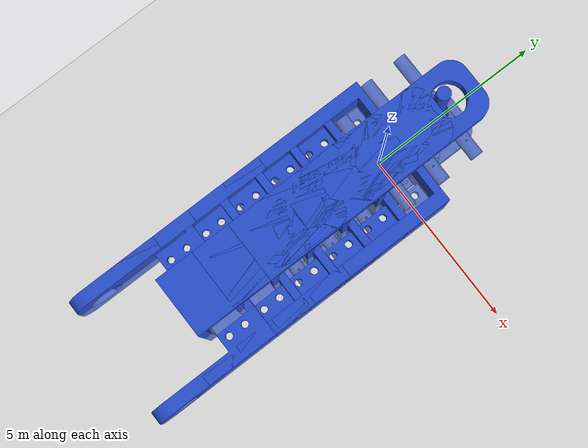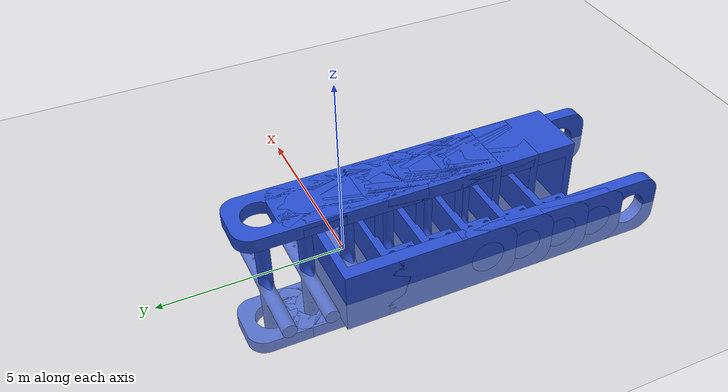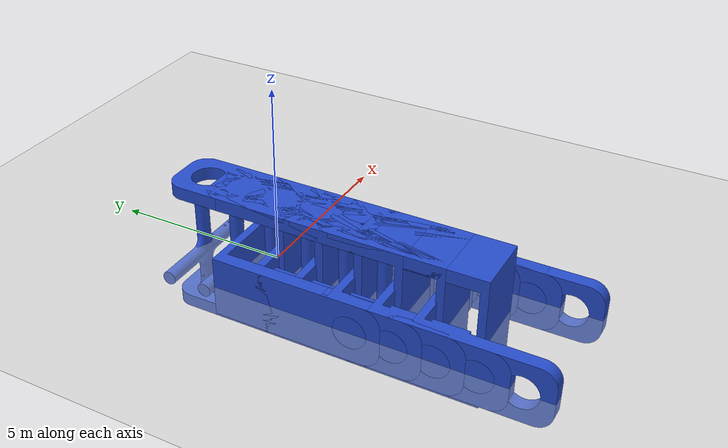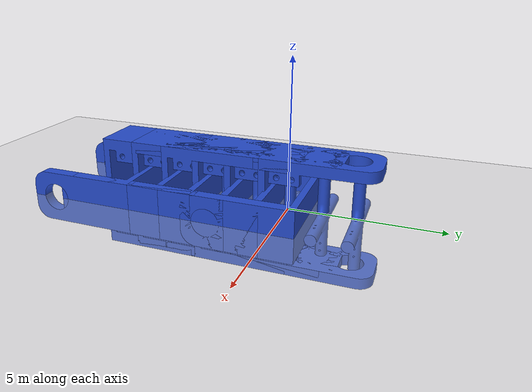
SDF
<sdf version='1.11'>    <world name="car_world">

<model name="ground_plane">
            <static>true</static>
            <link name="link">
                <collision name="collision">
                <geometry>
                    <plane>
                    <normal>0 0 1</normal>
                    </plane>
                </geometry>
                </collision>
                <visual name="visual">
                <geometry>
                    <plane>
                    <normal>0 0 1</normal>
                    <size>100 100</size>
                    </plane>
                </geometry>
                <material>
                    <ambient>0.8 0.8 0.8 1</ambient>
                    <diffuse>0.8 0.8 0.8 1</diffuse>
                    <specular>0.8 0.8 0.8 1</specular>
                </material>
                </visual>
            </link>
        </model>
  <model name='snake_robot'>
    <link name='base_link'>
      <inertial>
        <pose>0 0 0 0 0 0</pose>
        <mass>1</mass>
        <inertia>
          <ixx>0.10000000000000001</ixx>
          <ixy>0</ixy>
          <ixz>0</ixz>
          <iyy>0.10000000000000001</iyy>
          <iyz>0</iyz>
          <izz>0.10000000000000001</izz>
        </inertia>
      </inertial>
      <collision name='base_link_collision'>
        <pose>0 0 0 0 0 0</pose>
        <geometry>
          <mesh>
            <uri>file:///home/harikrishnan/ROS_PROJECTS/snake_bot_ws/src/snake_bot/meshes/module.stl</uri>
                  <scale>0.05 0.05 0.05 </scale>
     </mesh>
</geometry>
        <surface>
          <contact>
            <ode/>
          </contact>
          <friction>
            <ode/>
          </friction>
        </surface>
      </collision>
      <visual name='base_link_visual'>
        <pose>0 0.52800000000000002 0 3.1415899999999999 0 0</pose>
        <geometry>
          <mesh>
            <uri>file:///home/harikrishnan/ROS_PROJECTS/snake_bot_ws/src/snake_bot/meshes/module.stl</uri>
                  <scale>0.05 0.05 0.05 </scale>
     </mesh>
</geometry>
        <material>
          <script>
            <name>Gazebo/Blue</name>
            <uri>file://media/materials/scripts/gazebo.material</uri>
          </script>
          <diffuse>0 0 1 0.5</diffuse>
          <ambient>0 0 1 0.5</ambient>
        </material>
      </visual>
    </link>
    <joint name='joint2' type='revolute'>
      <pose relative_to='base_link'>0 0 0 0 0 0</pose>
      <parent>base_link</parent>
      <child>cross1</child>
      <axis>
        <xyz>1 0 0</xyz>
        <limit>
          <lower>-1.5700000000000001</lower>
          <upper>1.5700000000000001</upper>
          <effort>100</effort>
          <velocity>1</velocity>
        </limit>
        <dynamics>
          <spring_reference>0</spring_reference>
          <spring_stiffness>0</spring_stiffness>
        </dynamics>
      </axis>
    </joint>
    <link name='cross1'>
      <pose relative_to='joint2'>0 0 0 0 0 0</pose>
      <inertial>
        <pose>0 0 0 0 0 0</pose>
        <mass>1</mass>
        <inertia>
          <ixx>0.10000000000000001</ixx>
          <ixy>0</ixy>
          <ixz>0</ixz>
          <iyy>0.10000000000000001</iyy>
          <iyz>0</iyz>
          <izz>0.10000000000000001</izz>
        </inertia>
      </inertial>
      <collision name='cross1_collision'>
        <pose>0 0 0 0 0 0</pose>
        <geometry>
         <mesh>
            <uri>file:///home/harikrishnan/ROS_PROJECTS/snake_bot_ws/src/snake_bot/meshes/cross.stl</uri>
                  <scale>0.05 0.05 0.05 </scale>
     </mesh>
</geometry>
        <surface>
          <contact>
            <ode/>
          </contact>
          <friction>
            <ode/>
          </friction>
        </surface>
      </collision>
      <visual name='cross1_visual'>
        <pose>0.065000000000000002 -0.55800000000000005 0.065000000000000002 0 0 0</pose>
        <geometry>
         <mesh>
            <uri>file:///home/harikrishnan/ROS_PROJECTS/snake_bot_ws/src/snake_bot/meshes/cross.stl</uri>
                  <scale>0.05 0.05 0.05 </scale>
     </mesh>
</geometry>
        <material>
          <script>
            <name>Gazebo/Blue</name>
            <uri>file://media/materials/scripts/gazebo.material</uri>
          </script>
          <diffuse>0 0 1 0.5</diffuse>
          <ambient>0 0 1 0.5</ambient>
        </material>
      </visual>
    </link>
    <joint name='joint1' type='revolute'>
      <pose relative_to='cross1'>0 0 0 0 0 0</pose>
      <parent>cross1</parent>
      <child>segment1</child>
      <axis>
        <xyz>0 0 1</xyz>
        <limit>
          <lower>-1.5700000000000001</lower>
          <upper>1.5700000000000001</upper>
          <effort>100</effort>
          <velocity>1</velocity>
        </limit>
        <dynamics>
          <spring_reference>0</spring_reference>
          <spring_stiffness>0</spring_stiffness>
        </dynamics>
      </axis>
    </joint>
    <link name='segment1'>
      <pose relative_to='joint1'>0 0 0 0 0 0</pose>
      <inertial>
        <pose>0 -0.29999999999999999 0 0 0 0</pose>
        <mass>2</mass>
        <inertia>
          <ixx>0.37999999999999989</ixx>
          <ixy>0</ixy>
          <ixz>0</ixz>
          <iyy>0.20000000000000001</iyy>
          <iyz>0</iyz>
          <izz>0.37999999999999989</izz>
        </inertia>
      </inertial>
      <collision name='segment1_collision'>
        <pose>0 0 0 0 0 0</pose>
        <geometry>
          <mesh>
            <uri>file:///home/harikrishnan/ROS_PROJECTS/snake_bot_ws/src/snake_bot/meshes/module.stl</uri>
                  <scale>0.05 0.05 0.05 </scale>
     </mesh>
</geometry>
        <surface>
          <contact>
            <ode/>
          </contact>
          <friction>
            <ode/>
          </friction>
        </surface>
      </collision>
      <collision name='segment1_fixed_joint_lump__segment2a_collision_1'>
        <pose>0 -0.59999999999999998 0 0 0 0</pose>
        <geometry>
          <mesh>
            <uri>file:///home/harikrishnan/ROS_PROJECTS/snake_bot_ws/src/snake_bot/meshes/module.stl</uri>
                  <scale>0.05 0.05 0.05 </scale>
     </mesh>
</geometry>
        <surface>
          <contact>
            <ode/>
          </contact>
          <friction>
            <ode/>
          </friction>
        </surface>
      </collision>
      <visual name='segment1_visual'>
        <pose>0 -0.53000000000000003 0 0 1.5707963267948966 0</pose>
        <geometry>
          <mesh>
            <uri>file:///home/harikrishnan/ROS_PROJECTS/snake_bot_ws/src/snake_bot/meshes/module.stl</uri>
                  <scale>0.05 0.05 0.05 </scale>
     </mesh>
</geometry>
        <material>
          <script>
            <name>Gazebo/Blue</name>
            <uri>file://media/materials/scripts/gazebo.material</uri>
          </script>
          <diffuse>0 0 1 0.5</diffuse>
          <ambient>0 0 1 0.5</ambient>
        </material>
      </visual>
      <visual name='segment1_fixed_joint_lump__segment2a_visual_1'>
        <pose>0 -0.59999999999999998 0 0 0 3.1415899999999999</pose>
        <geometry>
          <mesh>
            <uri>file:///home/harikrishnan/ROS_PROJECTS/snake_bot_ws/src/snake_bot/meshes/module.stl</uri>
                  <scale>0.05 0.05 0.05 </scale>
     </mesh>
</geometry>
        <material>
          <script>
            <name>Gazebo/Blue</name>
            <uri>file://media/materials/scripts/gazebo.material</uri>
          </script>
          <diffuse>0 0 1 0.5</diffuse>
          <ambient>0 0 1 0.5</ambient>
        </material>
      </visual>
    </link>
    <joint name='joint4' type='revolute'>
      <pose relative_to='segment1'>0 -1.1220000000000001 0 0 0 0</pose>
      <parent>segment1</parent>
      <child>cross2</child>
      <axis>
        <xyz>1 0 0</xyz>
        <limit>
          <lower>-1.5700000000000001</lower>
          <upper>1.5700000000000001</upper>
          <effort>100</effort>
          <velocity>1</velocity>
        </limit>
        <dynamics>
          <spring_reference>0</spring_reference>
          <spring_stiffness>0</spring_stiffness>
        </dynamics>
      </axis>
    </joint>
    <link name='cross2'>
      <pose relative_to='joint4'>0 0 0 0 0 0</pose>
      <inertial>
        <pose>0 0 0 0 0 0</pose>
        <mass>1</mass>
        <inertia>
          <ixx>0.10000000000000001</ixx>
          <ixy>0</ixy>
          <ixz>0</ixz>
          <iyy>0.10000000000000001</iyy>
          <iyz>0</iyz>
          <izz>0.10000000000000001</izz>
        </inertia>
      </inertial>
      <collision name='cross2_collision'>
        <pose>0 0 0 0 0 0</pose>
        <geometry>
         <mesh>
            <uri>file:///home/harikrishnan/ROS_PROJECTS/snake_bot_ws/src/snake_bot/meshes/cross.stl</uri>
                  <scale>0.05 0.05 0.05 </scale>
     </mesh>
</geometry>
        <surface>
          <contact>
            <ode/>
          </contact>
          <friction>
            <ode/>
          </friction>
        </surface>
      </collision>
      <visual name='cross2_visual'>
        <pose>0.065000000000000002 -0.55800000000000005 0.065000000000000002 0 0 0</pose>
        <geometry>
         <mesh>
            <uri>file:///home/harikrishnan/ROS_PROJECTS/snake_bot_ws/src/snake_bot/meshes/cross.stl</uri>
                  <scale>0.05 0.05 0.05 </scale>
     </mesh>
</geometry>
        <material>
          <script>
            <name>Gazebo/Blue</name>
            <uri>file://media/materials/scripts/gazebo.material</uri>
          </script>
          <diffuse>0 0 1 0.5</diffuse>
          <ambient>0 0 1 0.5</ambient>
        </material>
      </visual>
    </link>
    <joint name='joint3' type='revolute'>
      <pose relative_to='cross2'>0 0 0 0 0 0</pose>
      <parent>cross2</parent>
      <child>segment2b</child>
      <axis>
        <xyz>0 0 1</xyz>
        <limit>
          <lower>-1.5700000000000001</lower>
          <upper>1.5700000000000001</upper>
          <effort>100</effort>
          <velocity>1</velocity>
        </limit>
        <dynamics>
          <spring_reference>0</spring_reference>
          <spring_stiffness>0</spring_stiffness>
        </dynamics>
      </axis>
    </joint>
    <link name='segment2b'>
      <pose relative_to='joint3'>0 0 0 0 0 0</pose>
      <inertial>
        <pose>0 -0.29999999999999999 0 0 0 0</pose>
        <mass>2</mass>
        <inertia>
          <ixx>0.37999999999999989</ixx>
          <ixy>0</ixy>
          <ixz>0</ixz>
          <iyy>0.20000000000000001</iyy>
          <iyz>0</iyz>
          <izz>0.37999999999999989</izz>
        </inertia>
      </inertial>
      <collision name='segment2b_collision'>
        <pose>0 0 0 0 0 0</pose>
        <geometry>
          <mesh>
            <uri>file:///home/harikrishnan/ROS_PROJECTS/snake_bot_ws/src/snake_bot/meshes/module.stl</uri>
                  <scale>0.05 0.05 0.05 </scale>
     </mesh>
</geometry>
        <surface>
          <contact>
            <ode/>
          </contact>
          <friction>
            <ode/>
          </friction>
        </surface>
      </collision>
      <collision name='segment2b_fixed_joint_lump__segment3a_collision_1'>
        <pose>0 -0.59999999999999998 0 0 0 0</pose>
        <geometry>
          <mesh>
            <uri>file:///home/harikrishnan/ROS_PROJECTS/snake_bot_ws/src/snake_bot/meshes/module.stl</uri>
                  <scale>0.05 0.05 0.05 </scale>
     </mesh>
</geometry>
        <surface>
          <contact>
            <ode/>
          </contact>
          <friction>
            <ode/>
          </friction>
        </surface>
      </collision>
      <visual name='segment2b_visual'>
        <pose>0 -0.55800000000000005 0 0 1.5707963267948966 0</pose>
        <geometry>
          <mesh>
            <uri>file:///home/harikrishnan/ROS_PROJECTS/snake_bot_ws/src/snake_bot/meshes/module.stl</uri>
                  <scale>0.05 0.05 0.05 </scale>
     </mesh>
</geometry>
        <material>
          <script>
            <name>Gazebo/Blue</name>
            <uri>file://media/materials/scripts/gazebo.material</uri>
          </script>
          <diffuse>0 0 1 0.5</diffuse>
          <ambient>0 0 1 0.5</ambient>
        </material>
      </visual>
      <visual name='segment2b_fixed_joint_lump__segment3a_visual_1'>
        <pose>0 -0.59999999999999998 0 0 0 3.1415899999999999</pose>
        <geometry>
          <mesh>
            <uri>file:///home/harikrishnan/ROS_PROJECTS/snake_bot_ws/src/snake_bot/meshes/module.stl</uri>
                  <scale>0.05 0.05 0.05 </scale>
     </mesh>
</geometry>
        <material>
          <script>
            <name>Gazebo/Blue</name>
            <uri>file://media/materials/scripts/gazebo.material</uri>
          </script>
          <diffuse>0 0 1 0.5</diffuse>
          <ambient>0 0 1 0.5</ambient>
        </material>
      </visual>
    </link>
    <joint name='joint6' type='revolute'>
      <pose relative_to='segment2b'>0 -1.1220000000000001 0 0 0 0</pose>
      <parent>segment2b</parent>
      <child>cross3</child>
      <axis>
        <xyz>1 0 0</xyz>
        <limit>
          <lower>-1.5700000000000001</lower>
          <upper>1.5700000000000001</upper>
          <effort>100</effort>
          <velocity>1</velocity>
        </limit>
        <dynamics>
          <spring_reference>0</spring_reference>
          <spring_stiffness>0</spring_stiffness>
        </dynamics>
      </axis>
    </joint>
    <link name='cross3'>
      <pose relative_to='joint6'>0 0 0 0 0 0</pose>
      <inertial>
        <pose>0 0 0 0 0 0</pose>
        <mass>1</mass>
        <inertia>
          <ixx>0.10000000000000001</ixx>
          <ixy>0</ixy>
          <ixz>0</ixz>
          <iyy>0.10000000000000001</iyy>
          <iyz>0</iyz>
          <izz>0.10000000000000001</izz>
        </inertia>
      </inertial>
      <collision name='cross3_collision'>
        <pose>0 0 0 0 0 0</pose>
        <geometry>
         <mesh>
            <uri>file:///home/harikrishnan/ROS_PROJECTS/snake_bot_ws/src/snake_bot/meshes/cross.stl</uri>
                  <scale>0.05 0.05 0.05 </scale>
     </mesh>
</geometry>
        <surface>
          <contact>
            <ode/>
          </contact>
          <friction>
            <ode/>
          </friction>
        </surface>
      </collision>
      <visual name='cross3_visual'>
        <pose>0.065000000000000002 -0.55800000000000005 0.065000000000000002 0 0 0</pose>
        <geometry>
         <mesh>
            <uri>file:///home/harikrishnan/ROS_PROJECTS/snake_bot_ws/src/snake_bot/meshes/cross.stl</uri>
                  <scale>0.05 0.05 0.05 </scale>
     </mesh>
</geometry>
        <material>
          <script>
            <name>Gazebo/Blue</name>
            <uri>file://media/materials/scripts/gazebo.material</uri>
          </script>
          <diffuse>0 0 1 0.5</diffuse>
          <ambient>0 0 1 0.5</ambient>
        </material>
      </visual>
    </link>
    <joint name='joint5' type='revolute'>
      <pose relative_to='cross3'>0 0 0 0 0 0</pose>
      <parent>cross3</parent>
      <child>segment3b</child>
      <axis>
        <xyz>0 0 1</xyz>
        <limit>
          <lower>-1.5700000000000001</lower>
          <upper>1.5700000000000001</upper>
          <effort>100</effort>
          <velocity>1</velocity>
        </limit>
        <dynamics>
          <spring_reference>0</spring_reference>
          <spring_stiffness>0</spring_stiffness>
        </dynamics>
      </axis>
    </joint>
    <link name='segment3b'>
      <pose relative_to='joint5'>0 0 0 0 0 0</pose>
      <inertial>
        <pose>0 -0.29999999999999999 0 0 0 0</pose>
        <mass>2</mass>
        <inertia>
          <ixx>0.37999999999999989</ixx>
          <ixy>0</ixy>
          <ixz>0</ixz>
          <iyy>0.20000000000000001</iyy>
          <iyz>0</iyz>
          <izz>0.37999999999999989</izz>
        </inertia>
      </inertial>
      <collision name='segment3b_collision'>
        <pose>0 0 0 0 0 0</pose>
        <geometry>
          <mesh>
            <uri>file:///home/harikrishnan/ROS_PROJECTS/snake_bot_ws/src/snake_bot/meshes/module.stl</uri>
                  <scale>0.05 0.05 0.05 </scale>
     </mesh>
</geometry>
        <surface>
          <contact>
            <ode/>
          </contact>
          <friction>
            <ode/>
          </friction>
        </surface>
      </collision>
      <collision name='segment3b_fixed_joint_lump__segment4a_collision_1'>
        <pose>0 -0.59999999999999998 0 0 0 0</pose>
        <geometry>
          <mesh>
            <uri>file:///home/harikrishnan/ROS_PROJECTS/snake_bot_ws/src/snake_bot/meshes/module.stl</uri>
                  <scale>0.05 0.05 0.05 </scale>
     </mesh>
</geometry>
        <surface>
          <contact>
            <ode/>
          </contact>
          <friction>
            <ode/>
          </friction>
        </surface>
      </collision>
      <visual name='segment3b_visual'>
        <pose>0 -0.55800000000000005 0 0 1.5707963267948966 0</pose>
        <geometry>
          <mesh>
            <uri>file:///home/harikrishnan/ROS_PROJECTS/snake_bot_ws/src/snake_bot/meshes/module.stl</uri>
                  <scale>0.05 0.05 0.05 </scale>
     </mesh>
</geometry>
        <material>
          <script>
            <name>Gazebo/Blue</name>
            <uri>file://media/materials/scripts/gazebo.material</uri>
          </script>
          <diffuse>0 0 1 0.5</diffuse>
          <ambient>0 0 1 0.5</ambient>
        </material>
      </visual>
      <visual name='segment3b_fixed_joint_lump__segment4a_visual_1'>
        <pose>0 -0.59999999999999998 0 0 0 3.1415899999999999</pose>
        <geometry>
          <mesh>
            <uri>file:///home/harikrishnan/ROS_PROJECTS/snake_bot_ws/src/snake_bot/meshes/module.stl</uri>
                  <scale>0.05 0.05 0.05 </scale>
     </mesh>
</geometry>
        <material>
          <script>
            <name>Gazebo/Blue</name>
            <uri>file://media/materials/scripts/gazebo.material</uri>
          </script>
          <diffuse>0 0 1 0.5</diffuse>
          <ambient>0 0 1 0.5</ambient>
        </material>
      </visual>
    </link>
    <joint name='joint8' type='revolute'>
      <pose relative_to='segment3b'>0 -1.1220000000000001 0 0 0 0</pose>
      <parent>segment3b</parent>
      <child>cross4</child>
      <axis>
        <xyz>1 0 0</xyz>
        <limit>
          <lower>-1.5700000000000001</lower>
          <upper>1.5700000000000001</upper>
          <effort>100</effort>
          <velocity>1</velocity>
        </limit>
        <dynamics>
          <spring_reference>0</spring_reference>
          <spring_stiffness>0</spring_stiffness>
        </dynamics>
      </axis>
    </joint>
    <link name='cross4'>
      <pose relative_to='joint8'>0 0 0 0 0 0</pose>
      <inertial>
        <pose>0 0 0 0 0 0</pose>
        <mass>1</mass>
        <inertia>
          <ixx>0.10000000000000001</ixx>
          <ixy>0</ixy>
          <ixz>0</ixz>
          <iyy>0.10000000000000001</iyy>
          <iyz>0</iyz>
          <izz>0.10000000000000001</izz>
        </inertia>
      </inertial>
      <collision name='cross4_collision'>
        <pose>0 0 0 0 0 0</pose>
        <geometry>
         <mesh>
            <uri>file:///home/harikrishnan/ROS_PROJECTS/snake_bot_ws/src/snake_bot/meshes/cross.stl</uri>
                  <scale>0.05 0.05 0.05 </scale>
     </mesh>
</geometry>
        <surface>
          <contact>
            <ode/>
          </contact>
          <friction>
            <ode/>
          </friction>
        </surface>
      </collision>
      <visual name='cross4_visual'>
        <pose>0.065000000000000002 -0.55800000000000005 0.065000000000000002 0 0 0</pose>
        <geometry>
         <mesh>
            <uri>file:///home/harikrishnan/ROS_PROJECTS/snake_bot_ws/src/snake_bot/meshes/cross.stl</uri>
                  <scale>0.05 0.05 0.05 </scale>
     </mesh>
</geometry>
        <material>
          <script>
            <name>Gazebo/Blue</name>
            <uri>file://media/materials/scripts/gazebo.material</uri>
          </script>
          <diffuse>0 0 1 0.5</diffuse>
          <ambient>0 0 1 0.5</ambient>
        </material>
      </visual>
    </link>
    <joint name='joint7' type='revolute'>
      <pose relative_to='cross4'>0 0 0 0 0 0</pose>
      <parent>cross4</parent>
      <child>segment4b</child>
      <axis>
        <xyz>0 0 1</xyz>
        <limit>
          <lower>-1.5700000000000001</lower>
          <upper>1.5700000000000001</upper>
          <effort>100</effort>
          <velocity>1</velocity>
        </limit>
        <dynamics>
          <spring_reference>0</spring_reference>
          <spring_stiffness>0</spring_stiffness>
        </dynamics>
      </axis>
    </joint>
    <link name='segment4b'>
      <pose relative_to='joint7'>0 0 0 0 0 0</pose>
      <inertial>
        <pose>0 -0.29999999999999999 0 0 0 0</pose>
        <mass>2</mass>
        <inertia>
          <ixx>0.37999999999999989</ixx>
          <ixy>0</ixy>
          <ixz>0</ixz>
          <iyy>0.20000000000000001</iyy>
          <iyz>0</iyz>
          <izz>0.37999999999999989</izz>
        </inertia>
      </inertial>
      <collision name='segment4b_collision'>
        <pose>0 0 0 0 0 0</pose>
        <geometry>
          <mesh>
            <uri>file:///home/harikrishnan/ROS_PROJECTS/snake_bot_ws/src/snake_bot/meshes/module.stl</uri>
                  <scale>0.05 0.05 0.05 </scale>
     </mesh>
</geometry>
        <surface>
          <contact>
            <ode/>
          </contact>
          <friction>
            <ode/>
          </friction>
        </surface>
      </collision>
      <collision name='segment4b_fixed_joint_lump__segment5a_collision_1'>
        <pose>0 -0.59999999999999998 0 0 0 0</pose>
        <geometry>
          <mesh>
            <uri>file:///home/harikrishnan/ROS_PROJECTS/snake_bot_ws/src/snake_bot/meshes/module.stl</uri>
                  <scale>0.05 0.05 0.05 </scale>
     </mesh>
</geometry>
        <surface>
          <contact>
            <ode/>
          </contact>
          <friction>
            <ode/>
          </friction>
        </surface>
      </collision>
      <visual name='segment4b_visual'>
        <pose>0 -0.55800000000000005 0 0 1.5707963267948966 0</pose>
        <geometry>
          <mesh>
            <uri>file:///home/harikrishnan/ROS_PROJECTS/snake_bot_ws/src/snake_bot/meshes/module.stl</uri>
                  <scale>0.05 0.05 0.05 </scale>
     </mesh>
</geometry>
        <material>
          <script>
            <name>Gazebo/Blue</name>
            <uri>file://media/materials/scripts/gazebo.material</uri>
          </script>
          <diffuse>0 0 1 0.5</diffuse>
          <ambient>0 0 1 0.5</ambient>
        </material>
      </visual>
      <visual name='segment4b_fixed_joint_lump__segment5a_visual_1'>
        <pose>0 -0.59999999999999998 0 0 0 3.1415899999999999</pose>
        <geometry>
          <mesh>
            <uri>file:///home/harikrishnan/ROS_PROJECTS/snake_bot_ws/src/snake_bot/meshes/module.stl</uri>
                  <scale>0.05 0.05 0.05 </scale>
     </mesh>
</geometry>
        <material>
          <script>
            <name>Gazebo/Blue</name>
            <uri>file://media/materials/scripts/gazebo.material</uri>
          </script>
          <diffuse>0 0 1 0.5</diffuse>
          <ambient>0 0 1 0.5</ambient>
        </material>
      </visual>
    </link>
    <joint name='joint10' type='revolute'>
      <pose relative_to='segment4b'>0 -1.1220000000000001 0 0 0 0</pose>
      <parent>segment4b</parent>
      <child>cross5</child>
      <axis>
        <xyz>1 0 0</xyz>
        <limit>
          <lower>-1.5700000000000001</lower>
          <upper>1.5700000000000001</upper>
          <effort>100</effort>
          <velocity>1</velocity>
        </limit>
        <dynamics>
          <spring_reference>0</spring_reference>
          <spring_stiffness>0</spring_stiffness>
        </dynamics>
      </axis>
    </joint>
    <link name='cross5'>
      <pose relative_to='joint10'>0 0 0 0 0 0</pose>
      <inertial>
        <pose>0 0 0 0 0 0</pose>
        <mass>1</mass>
        <inertia>
          <ixx>0.10000000000000001</ixx>
          <ixy>0</ixy>
          <ixz>0</ixz>
          <iyy>0.10000000000000001</iyy>
          <iyz>0</iyz>
          <izz>0.10000000000000001</izz>
        </inertia>
      </inertial>
      <collision name='cross5_collision'>
        <pose>0 0 0 0 0 0</pose>
        <geometry>
         <mesh>
            <uri>file:///home/harikrishnan/ROS_PROJECTS/snake_bot_ws/src/snake_bot/meshes/cross.stl</uri>
                  <scale>0.05 0.05 0.05 </scale>
     </mesh>
</geometry>
        <surface>
          <contact>
            <ode/>
          </contact>
          <friction>
            <ode/>
          </friction>
        </surface>
      </collision>
      <visual name='cross5_visual'>
        <pose>0.065000000000000002 -0.55800000000000005 0.065000000000000002 0 0 0</pose>
        <geometry>
         <mesh>
            <uri>file:///home/harikrishnan/ROS_PROJECTS/snake_bot_ws/src/snake_bot/meshes/cross.stl</uri>
                  <scale>0.05 0.05 0.05 </scale>
     </mesh>
</geometry>
        <material>
          <script>
            <name>Gazebo/Blue</name>
            <uri>file://media/materials/scripts/gazebo.material</uri>
          </script>
          <diffuse>0 0 1 0.5</diffuse>
          <ambient>0 0 1 0.5</ambient>
        </material>
      </visual>
    </link>
    <joint name='joint9' type='revolute'>
      <pose relative_to='cross5'>0 0 0 0 0 0</pose>
      <parent>cross5</parent>
      <child>segment5b</child>
      <axis>
        <xyz>0 0 1</xyz>
        <limit>
          <lower>-1.5700000000000001</lower>
          <upper>1.5700000000000001</upper>
          <effort>100</effort>
          <velocity>1</velocity>
        </limit>
        <dynamics>
          <spring_reference>0</spring_reference>
          <spring_stiffness>0</spring_stiffness>
        </dynamics>
      </axis>
    </joint>
    <link name='segment5b'>
      <pose relative_to='joint9'>0 0 0 0 0 0</pose>
      <inertial>
        <pose>0 -0.29999999999999999 0 0 0 0</pose>
        <mass>2</mass>
        <inertia>
          <ixx>0.37999999999999989</ixx>
          <ixy>0</ixy>
          <ixz>0</ixz>
          <iyy>0.20000000000000001</iyy>
          <iyz>0</iyz>
          <izz>0.37999999999999989</izz>
        </inertia>
      </inertial>
      <collision name='segment5b_collision'>
        <pose>0 0 0 0 0 0</pose>
        <geometry>
          <mesh>
            <uri>file:///home/harikrishnan/ROS_PROJECTS/snake_bot_ws/src/snake_bot/meshes/module.stl</uri>
                  <scale>0.05 0.05 0.05 </scale>
     </mesh>
</geometry>
        <surface>
          <contact>
            <ode/>
          </contact>
          <friction>
            <ode/>
          </friction>
        </surface>
      </collision>
      <collision name='segment5b_fixed_joint_lump__segment6a_collision_1'>
        <pose>0 -0.59999999999999998 0 0 0 0</pose>
        <geometry>
          <mesh>
            <uri>file:///home/harikrishnan/ROS_PROJECTS/snake_bot_ws/src/snake_bot/meshes/module.stl</uri>
                  <scale>0.05 0.05 0.05 </scale>
     </mesh>
</geometry>
        <surface>
          <contact>
            <ode/>
          </contact>
          <friction>
            <ode/>
          </friction>
        </surface>
      </collision>
      <visual name='segment5b_visual'>
        <pose>0 -0.55800000000000005 0 0 1.5707963267948966 0</pose>
        <geometry>
          <mesh>
            <uri>file:///home/harikrishnan/ROS_PROJECTS/snake_bot_ws/src/snake_bot/meshes/module.stl</uri>
                  <scale>0.05 0.05 0.05 </scale>
     </mesh>
</geometry>
        <material>
          <script>
            <name>Gazebo/Blue</name>
            <uri>file://media/materials/scripts/gazebo.material</uri>
          </script>
          <diffuse>0 0 1 0.5</diffuse>
          <ambient>0 0 1 0.5</ambient>
        </material>
      </visual>
      <visual name='segment5b_fixed_joint_lump__segment6a_visual_1'>
        <pose>0 -0.59999999999999998 0 0 0 3.1415899999999999</pose>
        <geometry>
          <mesh>
            <uri>file:///home/harikrishnan/ROS_PROJECTS/snake_bot_ws/src/snake_bot/meshes/module.stl</uri>
                  <scale>0.05 0.05 0.05 </scale>
     </mesh>
</geometry>
        <material>
          <script>
            <name>Gazebo/Blue</name>
            <uri>file://media/materials/scripts/gazebo.material</uri>
          </script>
          <diffuse>0 0 1 0.5</diffuse>
          <ambient>0 0 1 0.5</ambient>
        </material>
      </visual>
    </link>
    <joint name='joint12' type='revolute'>
      <pose relative_to='segment5b'>0 -1.1220000000000001 0 0 0 0</pose>
      <parent>segment5b</parent>
      <child>cross6</child>
      <axis>
        <xyz>1 0 0</xyz>
        <limit>
          <lower>-1.5700000000000001</lower>
          <upper>1.5700000000000001</upper>
          <effort>100</effort>
          <velocity>1</velocity>
        </limit>
        <dynamics>
          <spring_reference>0</spring_reference>
          <spring_stiffness>0</spring_stiffness>
        </dynamics>
      </axis>
    </joint>
    <link name='cross6'>
      <pose relative_to='joint12'>0 0 0 0 0 0</pose>
      <inertial>
        <pose>0 0 0 0 0 0</pose>
        <mass>1</mass>
        <inertia>
          <ixx>0.10000000000000001</ixx>
          <ixy>0</ixy>
          <ixz>0</ixz>
          <iyy>0.10000000000000001</iyy>
          <iyz>0</iyz>
          <izz>0.10000000000000001</izz>
        </inertia>
      </inertial>
      <collision name='cross6_collision'>
        <pose>0 0 0 0 0 0</pose>
        <geometry>
         <mesh>
            <uri>file:///home/harikrishnan/ROS_PROJECTS/snake_bot_ws/src/snake_bot/meshes/cross.stl</uri>
                  <scale>0.05 0.05 0.05 </scale>
     </mesh>
</geometry>
        <surface>
          <contact>
            <ode/>
          </contact>
          <friction>
            <ode/>
          </friction>
        </surface>
      </collision>
      <visual name='cross6_visual'>
        <pose>0.065000000000000002 -0.55800000000000005 0.065000000000000002 0 0 0</pose>
        <geometry>
         <mesh>
            <uri>file:///home/harikrishnan/ROS_PROJECTS/snake_bot_ws/src/snake_bot/meshes/cross.stl</uri>
                  <scale>0.05 0.05 0.05 </scale>
     </mesh>
</geometry>
        <material>
          <script>
            <name>Gazebo/Blue</name>
            <uri>file://media/materials/scripts/gazebo.material</uri>
          </script>
          <diffuse>0 0 1 0.5</diffuse>
          <ambient>0 0 1 0.5</ambient>
        </material>
      </visual>
    </link>
    <joint name='joint11' type='revolute'>
      <pose relative_to='cross6'>0 0 0 0 0 0</pose>
      <parent>cross6</parent>
      <child>segment6b</child>
      <axis>
        <xyz>0 0 1</xyz>
        <limit>
          <lower>-1.5700000000000001</lower>
          <upper>1.5700000000000001</upper>
          <effort>100</effort>
          <velocity>1</velocity>
        </limit>
        <dynamics>
          <spring_reference>0</spring_reference>
          <spring_stiffness>0</spring_stiffness>
        </dynamics>
      </axis>
    </joint>
    <link name='segment6b'>
      <pose relative_to='joint11'>0 0 0 0 0 0</pose>
      <inertial>
        <pose>0 0 0 0 0 0</pose>
        <mass>1</mass>
        <inertia>
          <ixx>0.10000000000000001</ixx>
          <ixy>0</ixy>
          <ixz>0</ixz>
          <iyy>0.10000000000000001</iyy>
          <iyz>0</iyz>
          <izz>0.10000000000000001</izz>
        </inertia>
      </inertial>
      <collision name='segment6b_collision'>
        <pose>0 0 0 0 0 0</pose>
        <geometry>
          <mesh>
            <uri>file:///home/harikrishnan/ROS_PROJECTS/snake_bot_ws/src/snake_bot/meshes/module.stl</uri>
                  <scale>0.05 0.05 0.05 </scale>
     </mesh>
</geometry>
        <surface>
          <contact>
            <ode/>
          </contact>
          <friction>
            <ode/>
          </friction>
        </surface>
      </collision>
      <visual name='segment6b_visual'>
        <pose>0 -0.55800000000000005 0 0 1.5707963267948966 0</pose>
        <geometry>
          <mesh>
            <uri>file:///home/harikrishnan/ROS_PROJECTS/snake_bot_ws/src/snake_bot/meshes/module.stl</uri>
                  <scale>0.05 0.05 0.05 </scale>
     </mesh>
</geometry>
        <material>
          <script>
            <name>Gazebo/Blue</name>
            <uri>file://media/materials/scripts/gazebo.material</uri>
          </script>
          <diffuse>0 0 1 0.5</diffuse>
          <ambient>0 0 1 0.5</ambient>
        </material>
      </visual>
    </link>
    <plugin name='gazebo_ros2_control' filename='libgazebo_ros2_control.so'>
      <robotNamespace>/snake_robot</robotNamespace>
      <robot_param>robot_description</robot_param>
      <robot_param_node>robot_state_publisher</robot_param_node>
      <parameters>/home/harikrishnan/ROS_PROJECTS/snake_bot_ws/src/snake_bot/config/snake_controllers.yaml</parameters>
    </plugin>
    <frame name='joint_fix_mod_2' attached_to='segment1'>
      <pose>0 -0.59999999999999998 0 0 0 0</pose>
    </frame>
    <frame name='segment2a' attached_to='joint_fix_mod_2'>
      <pose>0 0 0 0 0 0</pose>
    </frame>
    <frame name='joint_fix_mod_3' attached_to='segment2b'>
      <pose>0 -0.59999999999999998 0 0 0 0</pose>
    </frame>
    <frame name='segment3a' attached_to='joint_fix_mod_3'>
      <pose>0 0 0 0 0 0</pose>
    </frame>
    <frame name='joint_fix_mod_4' attached_to='segment3b'>
      <pose>0 -0.59999999999999998 0 0 0 0</pose>
    </frame>
    <frame name='segment4a' attached_to='joint_fix_mod_4'>
      <pose>0 0 0 0 0 0</pose>
    </frame>
    <frame name='joint_fix_mod_5' attached_to='segment4b'>
      <pose>0 -0.59999999999999998 0 0 0 0</pose>
    </frame>
    <frame name='segment5a' attached_to='joint_fix_mod_5'>
      <pose>0 0 0 0 0 0</pose>
    </frame>
    <frame name='joint_fix_mod_6' attached_to='segment5b'>
      <pose>0 -0.59999999999999998 0 0 0 0</pose>
    </frame>
    <frame name='segment6a' attached_to='joint_fix_mod_6'>
      <pose>0 0 0 0 0 0</pose>
    </frame>
  </model>
  </world>
</sdf>
